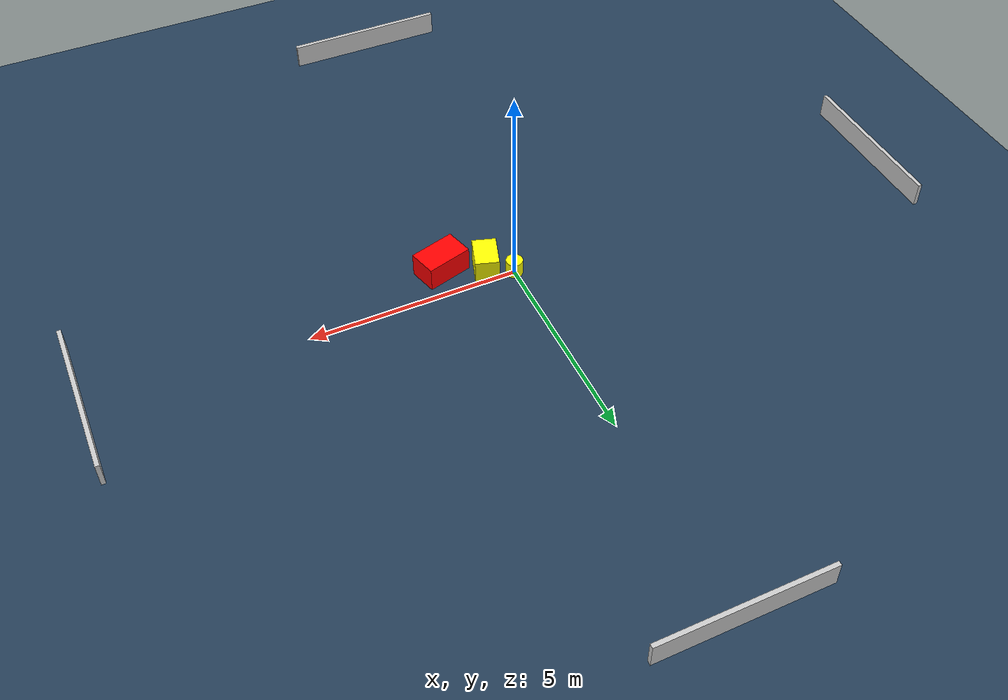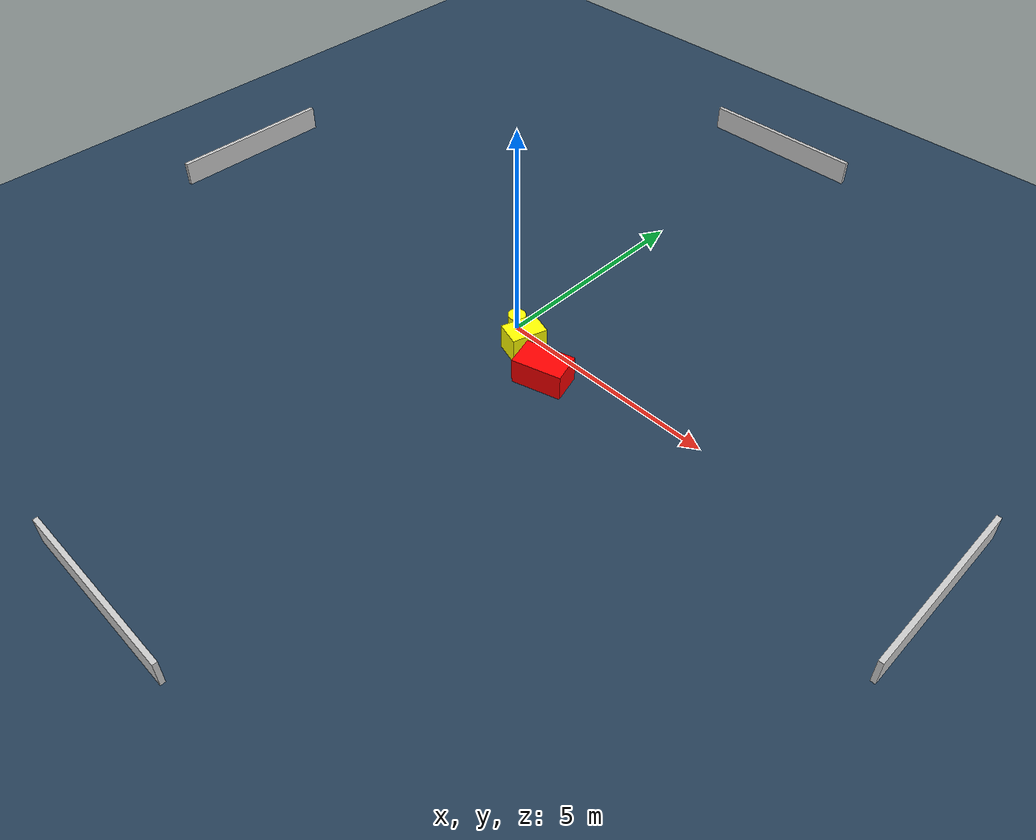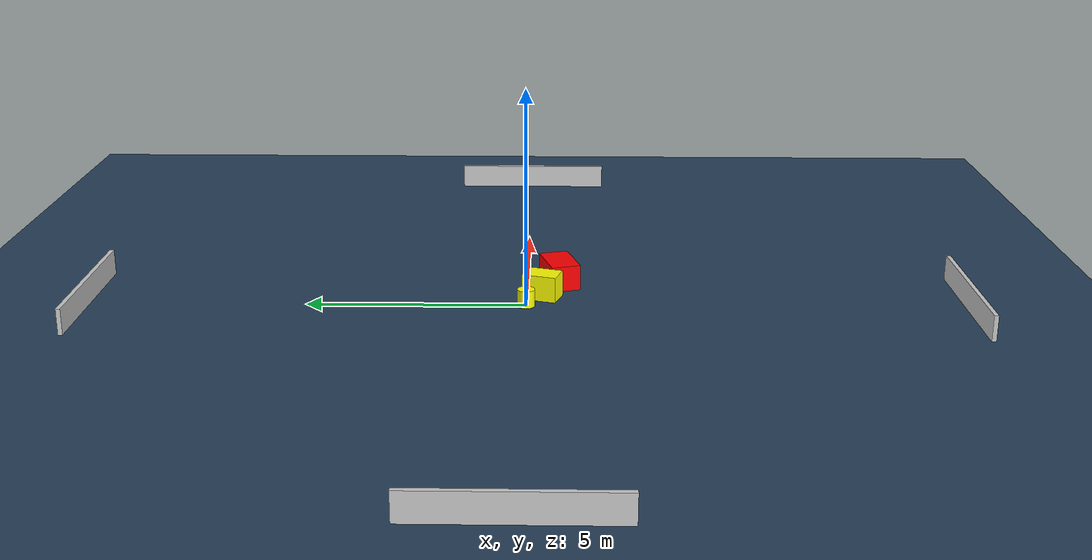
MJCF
<?xml version="1.0" ?>
<mujoco model="generated_environment">
  <option timestep="0.01" integrator="RK4" cone="elliptic"/>
  <default>
    <geom density="1"/>
  </default>
  <asset>
    <texture builtin="gradient" height="3072" name="skybox" rgb1="0.3 0.5 0.7" rgb2="0 0 0" type="skybox" width="512"/>
    <texture builtin="checker" height="300" name="groundplane" rgb1="0.2 0.3 0.4" rgb2="0.1 0.2 0.3" type="2d" width="300"/>
    <material name="groundplane" reflectance="0.2" texrepeat="5 5" texture="groundplane"/>
  </asset>
  <worldbody>
    <light dir="0 0 -1" directional="true" pos="0 0 1.5"/>
    <geom condim="3" friction="0.5 0.005 0.001" material="groundplane" name="floor" pos="0 0 0" size="0 0 0.05" type="plane"/>
    <body name="walls">
      <geom name="wall_1" condim="4" pos="-10.0 0.0 0.3" rgba="0.800000011920929 0.800000011920929 0.800000011920929 1.0" size="0.05 2.0 0.3" type="box"/>
      <geom name="wall_2" condim="4" pos="10.0 0.0 0.3" rgba="0.800000011920929 0.800000011920929 0.800000011920929 1.0" size="0.05 2.0 0.3" type="box"/>
      <geom name="wall_3" condim="4" pos="0.0 -10.0 0.3" rgba="0.800000011920929 0.800000011920929 0.800000011920929 1.0" size="2.0 0.05 0.3" type="box"/>
      <geom name="wall_4" condim="4" pos="0.0 10.0 0.3" rgba="0.800000011920929 0.800000011920929 0.800000011920929 1.0" size="2.0 0.05 0.3" type="box"/>
    </body>
    <body name="robot">
      <joint name="joint_x" type="slide" pos="0 0 0" axis="1 0 0"/>
      <joint name="joint_y" type="slide" pos="0 0 0" axis="0 1 0"/>
      <geom name="robot" type="cylinder" pos="0.0 0.0 0.2" size="0.2 0.2 0.0" mass="5.0" friction="1.0 0.005 0.0001" condim="4" rgba="1.0 1.0 0.0 1.0"/>
    </body>
    <body name="obstacle_1_movable">
      <geom name="obstacle_1_movable" condim="4" pos="0.569406431193857 -0.36272402254076386 0.3" euler="0 0 342.32270002613114" friction="0.0 0.005 0.001" rgba="1.0 1.0 0.0 1.0" size="0.2836394278616256 0.40044790962908744 0.3" type="box" mass="0.1"/>
      <joint type="free"/>
    </body>
    <body name="obstacle_2_static">
      <geom name="obstacle_2_static" condim="4" pos="1.524648591592494 -0.7625545899442673 0.3" euler="0 0 15.9236886034993" friction="0.0 0.005 0.001" rgba="1.0 0.0 0.0 1.0" size="0.5568906539885388 0.34483125694443467 0.3" type="box"/>
    </body>
  </worldbody>
  <actuator>
    <motor name="actuator_x" joint="joint_x" gear="1" ctrlrange="-1 1"/>
    <motor name="actuator_y" joint="joint_y" gear="1" ctrlrange="-1 1"/>
  </actuator>
</mujoco>
